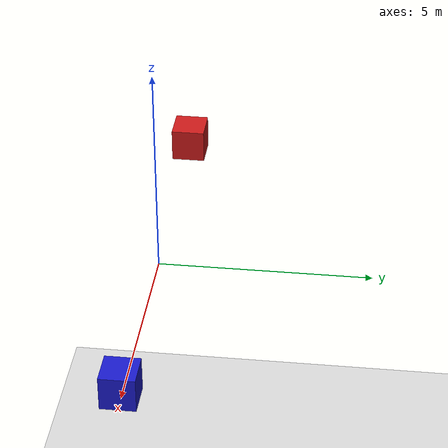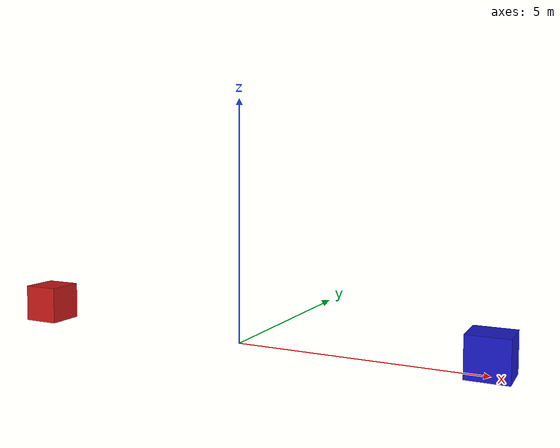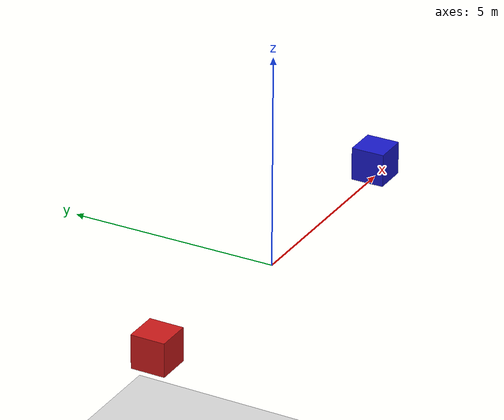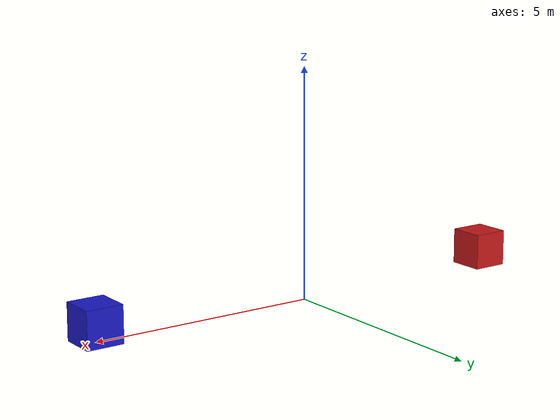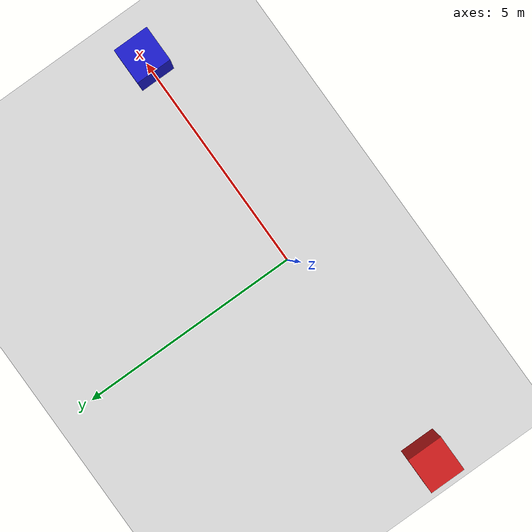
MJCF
<mujoco>
  <option gravity="0 0 -9.81"/>
  <worldbody>
    <body name="track" pos="0 0 -10">
      <geom type="plane" size="100 10 0.1" rgba="0.85 0.85 0.85 1" friction="0.01 0.01 0.01"/>
    </body>
    <body name="cart_1" pos="-5 0 0.4">
      <geom type="box" size="0.4 0.4 0.4" mass="3" rgba="0.8 0.1 0.1 1"/>
      <joint type="free"/>
    </body>
    <body name="cart_2" pos="5 0 0.4">
      <geom type="box" size="0.4 0.4 0.4" mass="6" rgba="0.1 0.1 0.8 1"/>
      <joint type="free"/>
    </body>
  </worldbody>
</mujoco>
